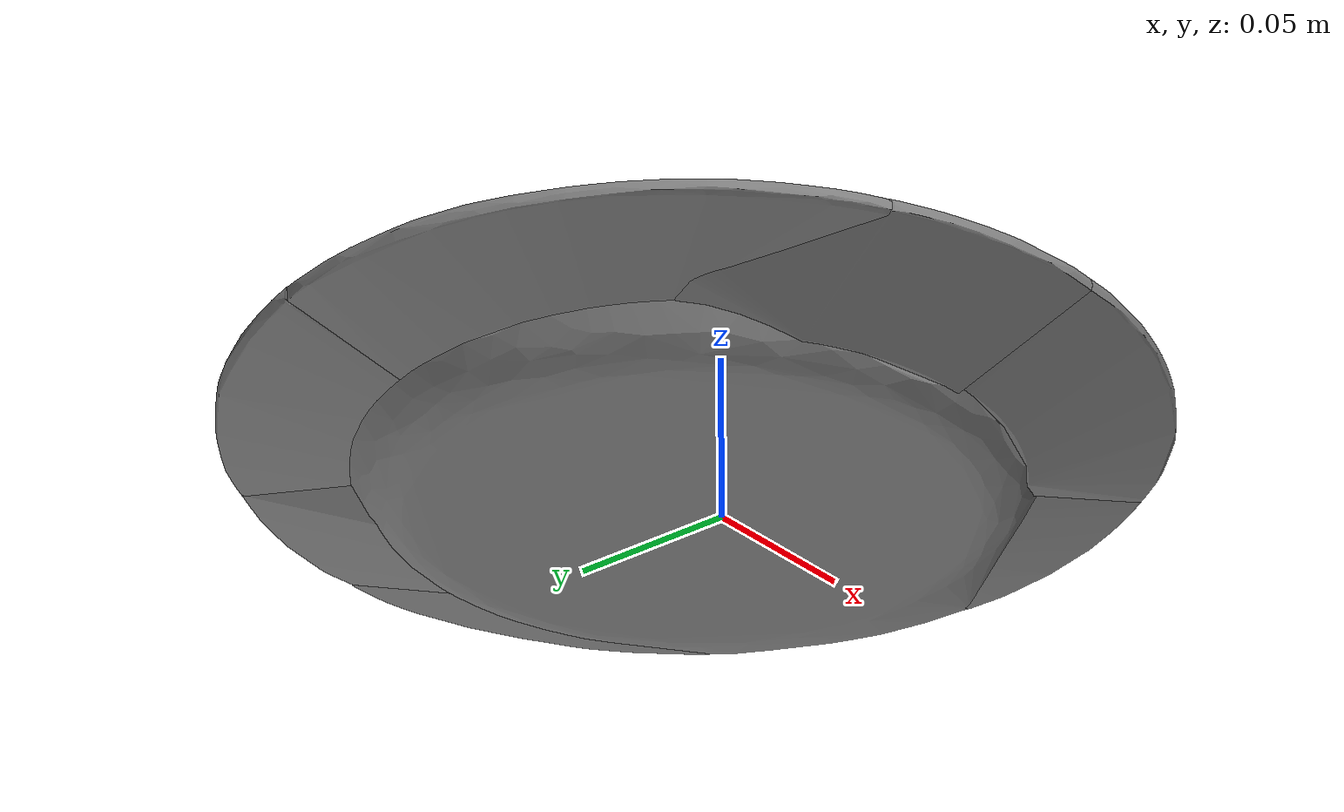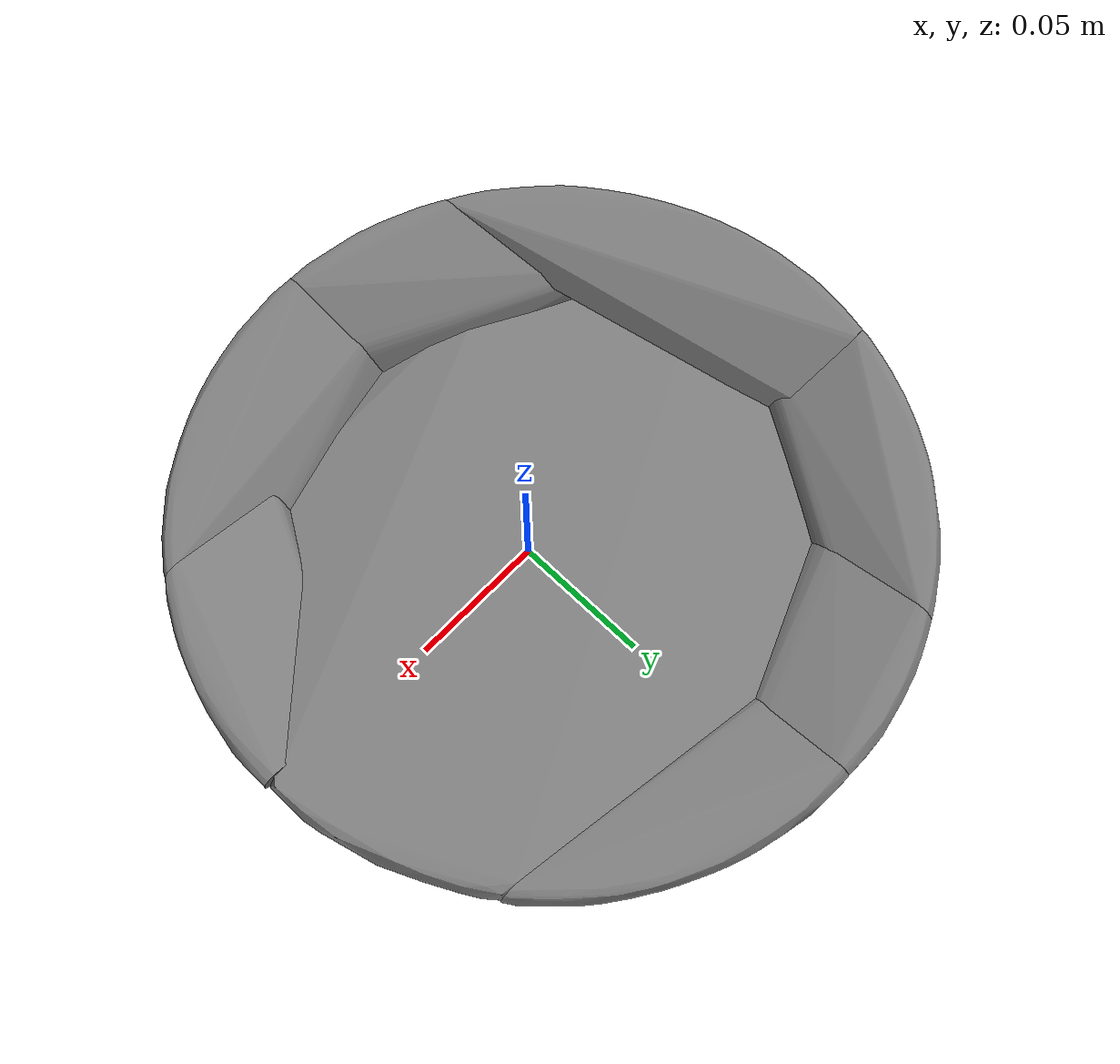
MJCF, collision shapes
<mujoco model="ycb_029_plate">
  <compiler meshdir="meshes" texturedir="meshes" angle="radian"/>
  <default>
    <default class="visual"><geom contype="0" conaffinity="0" group="2" density="0"/></default>
    <default class="collision"><geom group="3"/></default>
  </default>
  <asset>
    <texture name="ycb_029_plate_tex" type="2d" file="ycb_029_plate_texture.png"/>
    <material name="ycb_029_plate_mat" texture="ycb_029_plate_tex" specular="0.2" shininess="0.3"/>
    <mesh name="ycb_029_plate_visual" file="ycb_029_plate_visual.obj"/>
    <mesh name="ycb_029_plate_hull0" file="ycb_029_plate_hull0.obj"/>
    <mesh name="ycb_029_plate_hull1" file="ycb_029_plate_hull1.obj"/>
    <mesh name="ycb_029_plate_hull2" file="ycb_029_plate_hull2.obj"/>
    <mesh name="ycb_029_plate_hull3" file="ycb_029_plate_hull3.obj"/>
    <mesh name="ycb_029_plate_hull4" file="ycb_029_plate_hull4.obj"/>
    <mesh name="ycb_029_plate_hull5" file="ycb_029_plate_hull5.obj"/>
    <mesh name="ycb_029_plate_hull6" file="ycb_029_plate_hull6.obj"/>
    <mesh name="ycb_029_plate_hull7" file="ycb_029_plate_hull7.obj"/>
  </asset>
  <worldbody>
    <body name="object" pos="0 0 0">
      <freejoint name="object_free"/>
      <geom type="mesh" mesh="ycb_029_plate_visual" material="ycb_029_plate_mat" class="visual"/>
      <geom type="mesh" mesh="ycb_029_plate_hull0" class="collision"/>
      <geom type="mesh" mesh="ycb_029_plate_hull1" class="collision"/>
      <geom type="mesh" mesh="ycb_029_plate_hull2" class="collision"/>
      <geom type="mesh" mesh="ycb_029_plate_hull3" class="collision"/>
      <geom type="mesh" mesh="ycb_029_plate_hull4" class="collision"/>
      <geom type="mesh" mesh="ycb_029_plate_hull5" class="collision"/>
      <geom type="mesh" mesh="ycb_029_plate_hull6" class="collision"/>
      <geom type="mesh" mesh="ycb_029_plate_hull7" class="collision"/>
    </body>
  </worldbody>
</mujoco>
